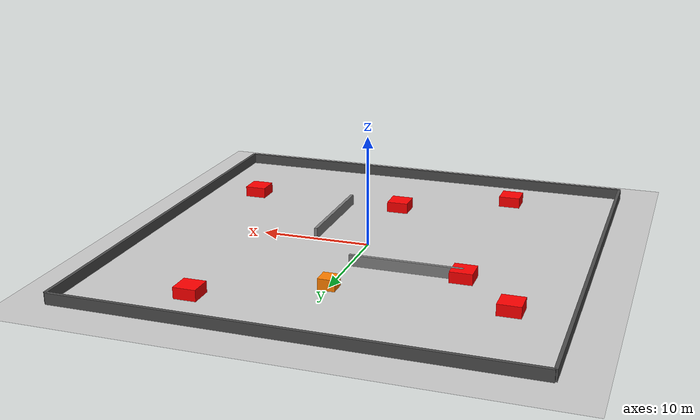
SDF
<?xml version="1.0" ?>
<sdf version="1.6">
  <world name="teknofest_v2">

    <include><uri>model://sun</uri></include>
    <include><uri>model://ground_plane</uri></include>

    <!-- Dış duvarlar 40x40m -->
    <model name="wall_north"><static>true</static><pose>0 20 0.5 0 0 0</pose>
      <link name="link"><collision name="c"><geometry><box><size>40 0.3 1</size></box></geometry></collision>
      <visual name="v"><geometry><box><size>40 0.3 1</size></box></geometry><material><ambient>0.3 0.3 0.3 1</ambient></material></visual></link></model>

    <model name="wall_south"><static>true</static><pose>0 -20 0.5 0 0 0</pose>
      <link name="link"><collision name="c"><geometry><box><size>40 0.3 1</size></box></geometry></collision>
      <visual name="v"><geometry><box><size>40 0.3 1</size></box></geometry><material><ambient>0.3 0.3 0.3 1</ambient></material></visual></link></model>

    <model name="wall_east"><static>true</static><pose>20 0 0.5 0 0 0</pose>
      <link name="link"><collision name="c"><geometry><box><size>0.3 40 1</size></box></geometry></collision>
      <visual name="v"><geometry><box><size>0.3 40 1</size></box></geometry><material><ambient>0.3 0.3 0.3 1</ambient></material></visual></link></model>

    <model name="wall_west"><static>true</static><pose>-20 0 0.5 0 0 0</pose>
      <link name="link"><collision name="c"><geometry><box><size>0.3 40 1</size></box></geometry></collision>
      <visual name="v"><geometry><box><size>0.3 40 1</size></box></geometry><material><ambient>0.3 0.3 0.3 1</ambient></material></visual></link></model>

    <!-- İç duvarlar — L şeklinde koridor -->
    <model name="ic_duvar_1"><static>true</static><pose>-5 5 0.5 0 0 0</pose>
      <link name="link"><collision name="c"><geometry><box><size>10 0.3 1</size></box></geometry></collision>
      <visual name="v"><geometry><box><size>10 0.3 1</size></box></geometry><material><ambient>0.5 0.5 0.5 1</ambient></material></visual></link></model>

    <model name="ic_duvar_2"><static>true</static><pose>5 -5 0.5 0 0 0</pose>
      <link name="link"><collision name="c"><geometry><box><size>0.3 10 1</size></box></geometry></collision>
      <visual name="v"><geometry><box><size>0.3 10 1</size></box></geometry><material><ambient>0.5 0.5 0.5 1</ambient></material></visual></link></model>

    <!-- Statik engeller — kırmızı -->
    <model name="engel_1"><static>true</static><pose>-15 10 0.5 0 0 0</pose>
      <link name="link"><collision name="c"><geometry><box><size>2 2 1</size></box></geometry></collision>
      <visual name="v"><geometry><box><size>2 2 1</size></box></geometry><material><ambient>1 0 0 1</ambient></material></visual></link></model>

    <model name="engel_2"><static>true</static><pose>10 15 0.5 0 0 0</pose>
      <link name="link"><collision name="c"><geometry><box><size>2 2 1</size></box></geometry></collision>
      <visual name="v"><geometry><box><size>2 2 1</size></box></geometry><material><ambient>1 0 0 1</ambient></material></visual></link></model>

    <model name="engel_3"><static>true</static><pose>15 -10 0.5 0 0 0</pose>
      <link name="link"><collision name="c"><geometry><box><size>2 2 1</size></box></geometry></collision>
      <visual name="v"><geometry><box><size>2 2 1</size></box></geometry><material><ambient>1 0 0 1</ambient></material></visual></link></model>

    <model name="engel_4"><static>true</static><pose>-10 -15 0.5 0 0 0</pose>
      <link name="link"><collision name="c"><geometry><box><size>2 2 1</size></box></geometry></collision>
      <visual name="v"><geometry><box><size>2 2 1</size></box></geometry><material><ambient>1 0 0 1</ambient></material></visual></link></model>

    <model name="engel_5"><static>true</static><pose>0 -10 0.5 0 0 0</pose>
      <link name="link"><collision name="c"><geometry><box><size>2 2 1</size></box></geometry></collision>
      <visual name="v"><geometry><box><size>2 2 1</size></box></geometry><material><ambient>1 0 0 1</ambient></material></visual></link></model>

    <model name="engel_6"><static>true</static><pose>-10 5 0.5 0 0 0</pose>
      <link name="link"><collision name="c"><geometry><box><size>2 2 1</size></box></geometry></collision>
      <visual name="v"><geometry><box><size>2 2 1</size></box></geometry><material><ambient>1 0 0 1</ambient></material></visual></link></model>

    <!-- Dinamik engel — ileri geri hareket eder -->
    <model name="dinamik_engel">
      <pose>0 10 0.5 0 0 0</pose>
      <link name="link">
        <collision name="c"><geometry><box><size>1.5 1.5 1</size></box></geometry></collision>
        <visual name="v">
          <geometry><box><size>1.5 1.5 1</size></box></geometry>
          <material><ambient>1 0.5 0 1</ambient></material>
        </visual>
        <inertial><mass>10</mass></inertial>
      </link>
      <plugin name="move_plugin" filename="libgazebo_ros_planar_move.so">
        <ros><namespace>/dynamic_obstacle</namespace></ros>
        <publish_odom>true</publish_odom>
        <publish_odom_tf>false</publish_odom_tf>
      </plugin>
    </model>

  </world>
</sdf>
